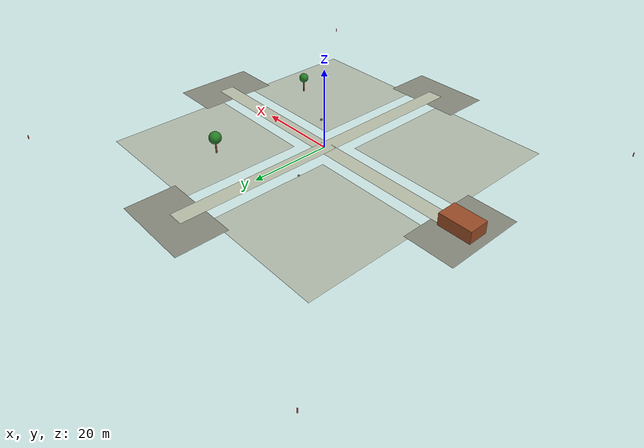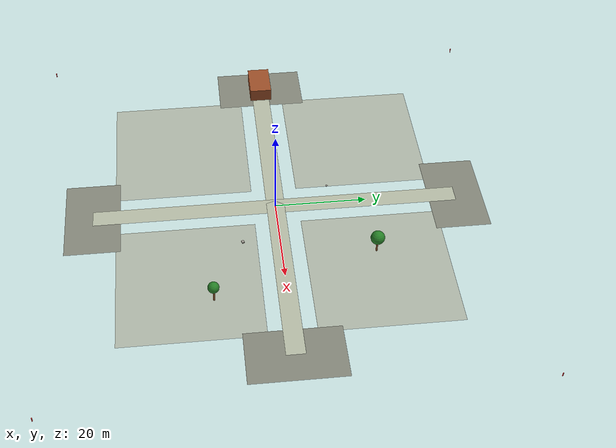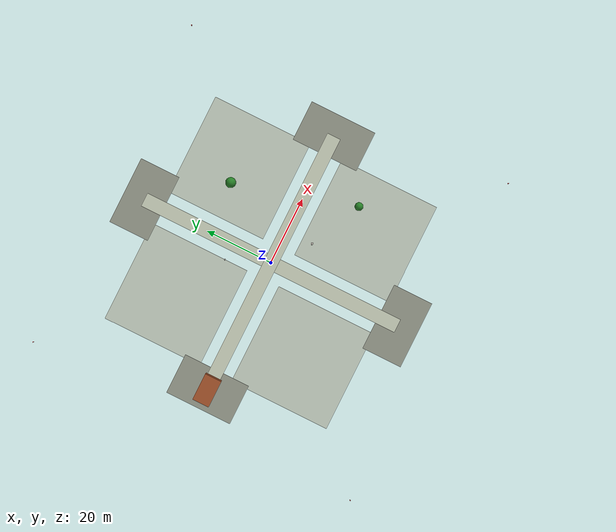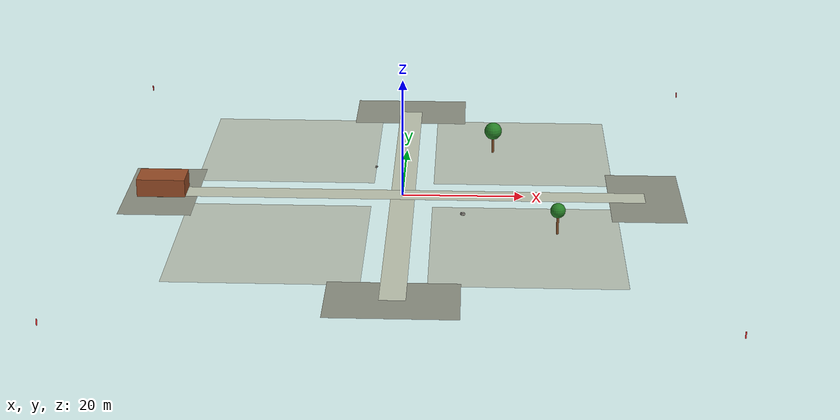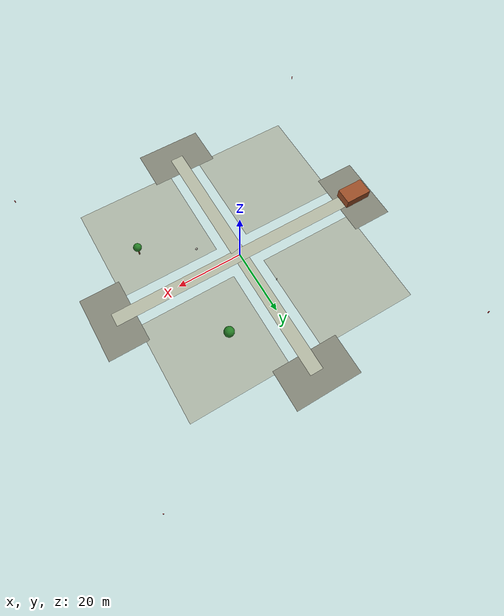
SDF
<sdf version="1.9">
 <world name="agricultural_field">
  <physics name="default_physics" type="ode">
   <max_step_size>0.001</max_step_size>
   <real_time_factor>1.0</real_time_factor>
   <real_time_update_rate>1000</real_time_update_rate>
  </physics>
  <gravity>0 0 -9.81</gravity>
  <spherical_coordinates>
   <surface_model>EARTH_WGS84</surface_model>
   <world_frame_orientation>ENU</world_frame_orientation>
   <latitude_deg>36.35</latitude_deg>
   <longitude_deg>127.38</longitude_deg>
   <elevation>50</elevation>
   <heading_deg>0</heading_deg>
  </spherical_coordinates>
  <light type="directional" name="sun">
   <pose>0 0 100 0 0 0</pose>
   <diffuse>0.9 0.9 0.85 1</diffuse>
   <specular>0.3 0.3 0.3 1</specular>
   <direction>-0.5 0.3 -1.0</direction>
  </light>
  <model name="road_ns">
   <static>true</static>
   <pose>0 0 0.01 0 0 0</pose>
   <link name="link">
    <collision name="collision">
     <geometry><box><size>80 4 0.02</size></box></geometry>
     <surface><friction><ode><mu>0.9</mu><mu2>0.8</mu2></ode></friction></surface>
    </collision>
    <visual name="visual">
     <geometry><box><size>80 4 0.02</size></box></geometry>
     <material><ambient>0.55 0.45 0.3 0.4</ambient><diffuse>0.65 0.55 0.35 0.4</diffuse></material>
     <transparency>0.6</transparency>
    </visual>
   </link>
  </model>
  <model name="road_ew">
   <static>true</static>
   <pose>0 0 0.01 0 0 0</pose>
   <link name="link">
    <collision name="collision">
     <geometry><box><size>4 80 0.02</size></box></geometry>
     <surface><friction><ode><mu>0.9</mu><mu2>0.8</mu2></ode></friction></surface>
    </collision>
    <visual name="visual">
     <geometry><box><size>4 80 0.02</size></box></geometry>
     <material><ambient>0.55 0.45 0.3 0.4</ambient><diffuse>0.65 0.55 0.35 0.4</diffuse></material>
     <transparency>0.6</transparency>
    </visual>
   </link>
  </model>
  <model name="field_ne">
   <static>true</static>
   <pose>20 20 0.005 0 0 0</pose>
   <link name="link">
    <collision name="collision">
     <geometry><box><size>30 30 0.01</size></box></geometry>
     <surface><friction><ode><mu>0.5</mu><mu2>0.35</mu2></ode></friction></surface>
    </collision>
    <visual name="visual">
     <geometry><box><size>30 30 0.01</size></box></geometry>
     <material><ambient>0.4 0.3 0.15 0.3</ambient><diffuse>0.5 0.38 0.2 0.3</diffuse></material>
     <transparency>0.7</transparency>
    </visual>
   </link>
  </model>
  <model name="field_sw">
   <static>true</static>
   <pose>-20 -20 0.005 0 0 0</pose>
   <link name="link">
    <collision name="collision">
     <geometry><box><size>30 30 0.01</size></box></geometry>
     <surface><friction><ode><mu>0.5</mu><mu2>0.35</mu2></ode></friction></surface>
    </collision>
    <visual name="visual">
     <geometry><box><size>30 30 0.01</size></box></geometry>
     <material><ambient>0.4 0.3 0.15 0.3</ambient><diffuse>0.5 0.38 0.2 0.3</diffuse></material>
     <transparency>0.7</transparency>
    </visual>
   </link>
  </model>
  <model name="field_nw">
   <static>true</static>
   <pose>20 -20 0.005 0 0 0</pose>
   <link name="link">
    <collision name="collision">
     <geometry><box><size>30 30 0.01</size></box></geometry>
     <surface><friction><ode><mu>0.5</mu><mu2>0.35</mu2></ode></friction></surface>
    </collision>
    <visual name="visual">
     <geometry><box><size>30 30 0.01</size></box></geometry>
     <material><ambient>0.4 0.3 0.15 0.3</ambient><diffuse>0.5 0.38 0.2 0.3</diffuse></material>
     <transparency>0.7</transparency>
    </visual>
   </link>
  </model>
  <model name="field_se">
   <static>true</static>
   <pose>-20 20 0.005 0 0 0</pose>
   <link name="link">
    <collision name="collision">
     <geometry><box><size>30 30 0.01</size></box></geometry>
     <surface><friction><ode><mu>0.5</mu><mu2>0.35</mu2></ode></friction></surface>
    </collision>
    <visual name="visual">
     <geometry><box><size>30 30 0.01</size></box></geometry>
     <material><ambient>0.4 0.3 0.15 0.3</ambient><diffuse>0.5 0.38 0.2 0.3</diffuse></material>
     <transparency>0.7</transparency>
    </visual>
   </link>
  </model>
  <model name="mud_north">
   <static>true</static>
   <pose>40 0 0.008 0 0 0</pose>
   <link name="link">
    <collision name="collision">
     <geometry><box><size>12 20 0.016</size></box></geometry>
     <surface><friction><ode><mu>0.25</mu><mu2>0.15</mu2></ode></friction></surface>
    </collision>
    <visual name="visual">
     <geometry><box><size>12 20 0.016</size></box></geometry>
     <material><ambient>0.2 0.15 0.08 0.5</ambient><diffuse>0.3 0.22 0.12 0.5</diffuse></material>
     <transparency>0.5</transparency>
    </visual>
   </link>
  </model>
  <model name="mud_south">
   <static>true</static>
   <pose>-40 0 0.008 0 0 0</pose>
   <link name="link">
    <collision name="collision">
     <geometry><box><size>12 20 0.016</size></box></geometry>
     <surface><friction><ode><mu>0.25</mu><mu2>0.15</mu2></ode></friction></surface>
    </collision>
    <visual name="visual">
     <geometry><box><size>12 20 0.016</size></box></geometry>
     <material><ambient>0.2 0.15 0.08 0.5</ambient><diffuse>0.3 0.22 0.12 0.5</diffuse></material>
     <transparency>0.5</transparency>
    </visual>
   </link>
  </model>
  <model name="mud_east">
   <static>true</static>
   <pose>0 40 0.008 0 0 0</pose>
   <link name="link">
    <collision name="collision">
     <geometry><box><size>20 12 0.016</size></box></geometry>
     <surface><friction><ode><mu>0.25</mu><mu2>0.15</mu2></ode></friction></surface>
    </collision>
    <visual name="visual">
     <geometry><box><size>20 12 0.016</size></box></geometry>
     <material><ambient>0.2 0.15 0.08 0.5</ambient><diffuse>0.3 0.22 0.12 0.5</diffuse></material>
     <transparency>0.5</transparency>
    </visual>
   </link>
  </model>
  <model name="mud_west">
   <static>true</static>
   <pose>0 -40 0.008 0 0 0</pose>
   <link name="link">
    <collision name="collision">
     <geometry><box><size>20 12 0.016</size></box></geometry>
     <surface><friction><ode><mu>0.25</mu><mu2>0.15</mu2></ode></friction></surface>
    </collision>
    <visual name="visual">
     <geometry><box><size>20 12 0.016</size></box></geometry>
     <material><ambient>0.2 0.15 0.08 0.5</ambient><diffuse>0.3 0.22 0.12 0.5</diffuse></material>
     <transparency>0.5</transparency>
    </visual>
   </link>
  </model>
  <model name="marker_ne">
   <static>true</static>
   <pose>50 50 0.5 0 0 0</pose>
   <link name="link">
    <visual name="visual">
     <geometry><cylinder><radius>0.1</radius><length>1.0</length></cylinder></geometry>
     <material><ambient>1 0 0 1</ambient><diffuse>1 0.2 0.2 1</diffuse></material>
    </visual>
   </link>
  </model>
  <model name="marker_nw">
   <static>true</static>
   <pose>50 -50 0.5 0 0 0</pose>
   <link name="link">
    <visual name="visual">
     <geometry><cylinder><radius>0.1</radius><length>1.0</length></cylinder></geometry>
     <material><ambient>1 0 0 1</ambient><diffuse>1 0.2 0.2 1</diffuse></material>
    </visual>
   </link>
  </model>
  <model name="marker_se">
   <static>true</static>
   <pose>-50 50 0.5 0 0 0</pose>
   <link name="link">
    <visual name="visual">
     <geometry><cylinder><radius>0.1</radius><length>1.0</length></cylinder></geometry>
     <material><ambient>1 0 0 1</ambient><diffuse>1 0.2 0.2 1</diffuse></material>
    </visual>
   </link>
  </model>
  <model name="marker_sw">
   <static>true</static>
   <pose>-50 -50 0.5 0 0 0</pose>
   <link name="link">
    <visual name="visual">
     <geometry><cylinder><radius>0.1</radius><length>1.0</length></cylinder></geometry>
     <material><ambient>1 0 0 1</ambient><diffuse>1 0.2 0.2 1</diffuse></material>
    </visual>
   </link>
  </model>
  <model name="barn">
   <static>true</static>
   <pose>-40 0 1.5 0 0 0</pose>
   <link name="link">
    <collision name="collision"><geometry><box><size>8 5 3</size></box></geometry></collision>
    <visual name="visual">
     <geometry><box><size>8 5 3</size></box></geometry>
     <material><ambient>0.5 0.25 0.1 1</ambient><diffuse>0.6 0.3 0.15 1</diffuse></material>
    </visual>
   </link>
  </model>
  <model name="tree_1">
   <static>true</static>
   <pose>15 20 1.5 0 0 0</pose>
   <link name="link">
    <collision name="trunk">
     <geometry><cylinder><radius>0.2</radius><length>3.0</length></cylinder></geometry>
    </collision>
    <visual name="trunk_visual">
     <geometry><cylinder><radius>0.2</radius><length>3.0</length></cylinder></geometry>
     <material><ambient>0.4 0.25 0.1 1</ambient><diffuse>0.5 0.3 0.15 1</diffuse></material>
    </visual>
    <visual name="canopy_visual">
     <pose>0 0 2.5 0 0 0</pose>
     <geometry><sphere><radius>1.5</radius></sphere></geometry>
     <material><ambient>0.1 0.4 0.1 1</ambient><diffuse>0.15 0.5 0.15 1</diffuse></material>
    </visual>
   </link>
  </model>
  <model name="tree_2">
   <static>true</static>
   <pose>25 -15 1.5 0 0 0</pose>
   <link name="link">
    <collision name="trunk">
     <geometry><cylinder><radius>0.2</radius><length>3.0</length></cylinder></geometry>
    </collision>
    <visual name="trunk_visual">
     <geometry><cylinder><radius>0.2</radius><length>3.0</length></cylinder></geometry>
     <material><ambient>0.4 0.25 0.1 1</ambient><diffuse>0.5 0.3 0.15 1</diffuse></material>
    </visual>
    <visual name="canopy_visual">
     <pose>0 0 2.5 0 0 0</pose>
     <geometry><sphere><radius>1.2</radius></sphere></geometry>
     <material><ambient>0.1 0.4 0.1 1</ambient><diffuse>0.15 0.5 0.15 1</diffuse></material>
    </visual>
   </link>
  </model>
  <model name="rock_1">
   <static>true</static>
   <pose>10 -8 0.2 0.1 0.2 0.5</pose>
   <link name="link">
    <collision name="collision"><geometry><box><size>0.6 0.5 0.4</size></box></geometry></collision>
    <visual name="visual">
     <geometry><box><size>0.6 0.5 0.4</size></box></geometry>
     <material><ambient>0.5 0.5 0.5 1</ambient><diffuse>0.6 0.58 0.55 1</diffuse></material>
    </visual>
   </link>
  </model>
  <model name="rock_2">
   <static>true</static>
   <pose>-5 12 0.15 0.3 0.1 1.2</pose>
   <link name="link">
    <collision name="collision"><geometry><box><size>0.4 0.3 0.3</size></box></geometry></collision>
    <visual name="visual">
     <geometry><box><size>0.4 0.3 0.3</size></box></geometry>
     <material><ambient>0.45 0.45 0.45 1</ambient><diffuse>0.55 0.53 0.5 1</diffuse></material>
    </visual>
   </link>
  </model>
  <plugin filename="gz-sim-physics-system" name="gz::sim::systems::Physics"/>
  <plugin filename="gz-sim-scene-broadcaster-system" name="gz::sim::systems::SceneBroadcaster"/>
  <plugin filename="gz-sim-user-commands-system" name="gz::sim::systems::UserCommands"/>
  <plugin filename="gz-sim-sensors-system" name="gz::sim::systems::Sensors">
   <render_engine>ogre2</render_engine>
  </plugin>
  <plugin filename="gz-sim-imu-system" name="gz::sim::systems::Imu"/>
  <plugin filename="gz-sim-navsat-system" name="gz::sim::systems::NavSat"/>
  <plugin filename="gz-sim-contact-system" name="gz::sim::systems::Contact"/>
 </world>
</sdf>
